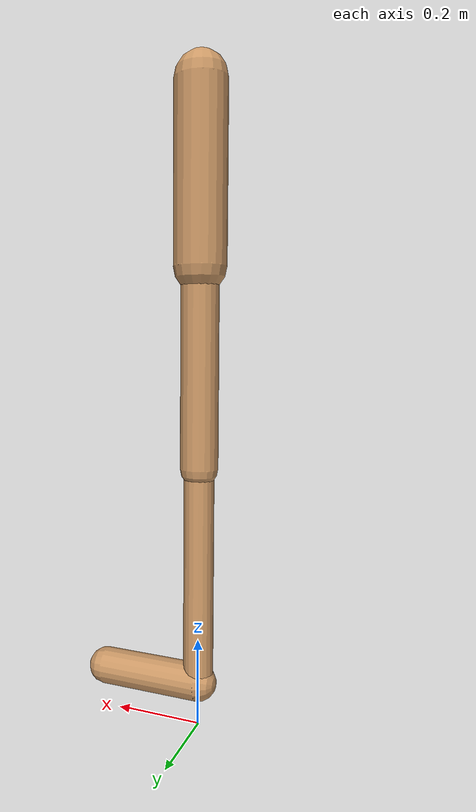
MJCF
<mujoco model="walker2d">
  <compiler angle="degree" coordinate="global" inertiafromgeom="true" />
  <default>
    <joint armature="0.01" damping=".1" limited="true" />
    <geom conaffinity="0" condim="3" contype="1" density="1000" friction="0.8 .1 .1" rgba="0.8 0.6 .4 1" />
  </default>
  <option integrator="RK4" timestep="0.002" />
  <worldbody>

    <body name="torso" pos="0 0 0.002356657334308912">
      <joint armature="0" axis="1 0 0" damping="0" limited="false" name="ignorex" pos="0 0 0" stiffness="0" type="slide" />
      <joint armature="0" axis="0 0 1" damping="0" limited="false" name="ignorez" pos="0 0 0" ref="1.25" stiffness="0" type="slide" />
      <joint armature="0" axis="0 1 0" damping="0" limited="false" name="ignorey" pos="0 0 0" stiffness="0" type="hinge" />
      <geom fromto="0 0 1.45 0 0 1.05" name="torso_geom" size="0.05948452818767641" type="capsule" />
      <body name="thigh">
        <joint axis="0 -1 0" name="thigh_joint" pos="0 0 1.05" range="-150 0" type="hinge" />
        <geom fromto="0.0 0.0 1.05 0.0 0.0 0.5988836886311169" name="thigh_geom" size="0.042701433617558016" type="capsule" />
        <body name="leg" pos="0.0 0.0 -0.0011163113688831272">
          <joint axis="0 -1 0" name="leg_joint" pos="0 0 0.6" range="-150 0" type="hinge" />
          <geom fromto="0.0 0.0 0.6 0.0 0.0 0.09875965403457426" name="leg_geom" size="0.03416114689404642" type="capsule" />
          <body name="foot" pos="0.0 0.0 -0.0012403459654257432">
            <joint axis="0 -1 0" name="foot_joint" pos="0 0 0.1" range="-45 45" type="hinge" />
            <geom fromto="-0.0 0.0 0.1 0.23348087487987224 0.0 0.1" name="foot_geom" size="0.04245655642058784" type="capsule" />
          </body>
        </body>
      </body>

      <body name="thigh_left">
        <joint axis="0 -1 0" name="thigh_left_joint" pos="0 0 1.05" range="-150 0" type="hinge" />
        <geom fromto="0.0 0.0 1.05 0.0 0.0 0.5988836886311169" name="thigh_left_geom" rgba=".7 .3 .6 1" size="0.042701433617558016" type="capsule" />
        <body name="leg_left" pos="0.0 0.0 -0.0011163113688831272">
          <joint axis="0 -1 0" name="leg_left_joint" pos="0 0 0.6" range="-150 0" type="hinge" />
          <geom fromto="0.0 0.0 0.6 0.0 0.0 0.09875965403457426" name="leg_left_geom" rgba=".7 .3 .6 1" size="0.03416114689404642" type="capsule" />
          <body name="foot_left" pos="0.0 0.0 -0.0012403459654257432">
            <joint axis="0 -1 0" name="foot_left_joint" pos="0 0 0.1" range="-45 45" type="hinge" />
            <geom fromto="-0.0 0.0 0.1 0.23348087487987224 0.0 0.1" name="foot_left_geom" rgba=".7 .3 .6 1" size="0.04245655642058784" type="capsule" />
          </body>
        </body>
      </body>
    </body>
  </worldbody>
  <actuator>

    <motor ctrllimited="true" ctrlrange="-1.0 1.0" gear="100" joint="thigh_joint" />
    <motor ctrllimited="true" ctrlrange="-1.0 1.0" gear="100" joint="leg_joint" />
    <motor ctrllimited="true" ctrlrange="-1.0 1.0" gear="100" joint="foot_joint" />
    <motor ctrllimited="true" ctrlrange="-1.0 1.0" gear="100" joint="thigh_left_joint" />
    <motor ctrllimited="true" ctrlrange="-1.0 1.0" gear="100" joint="leg_left_joint" />
    <motor ctrllimited="true" ctrlrange="-1.0 1.0" gear="100" joint="foot_left_joint" />

  </actuator>
</mujoco>
